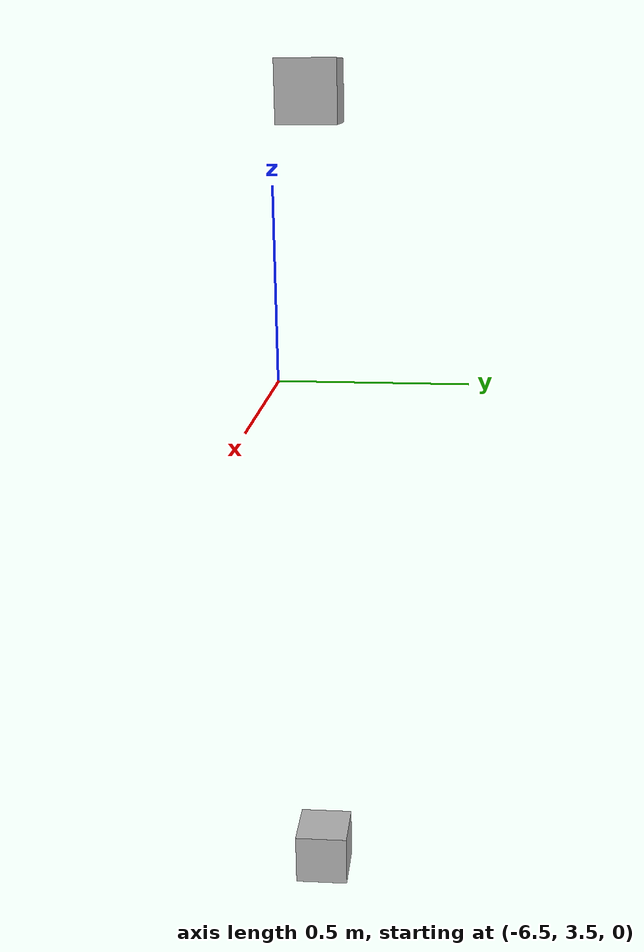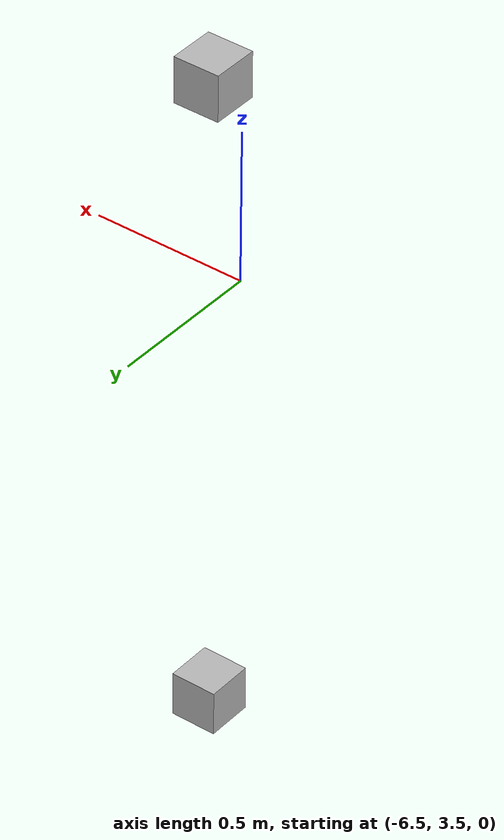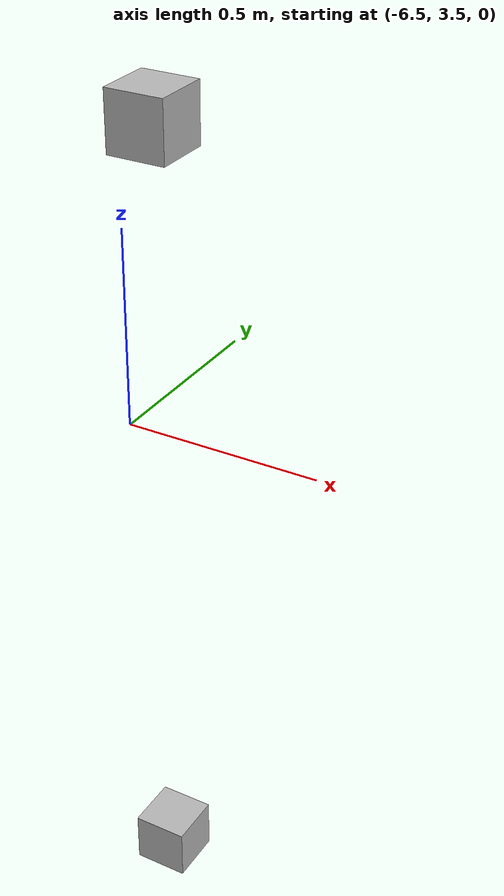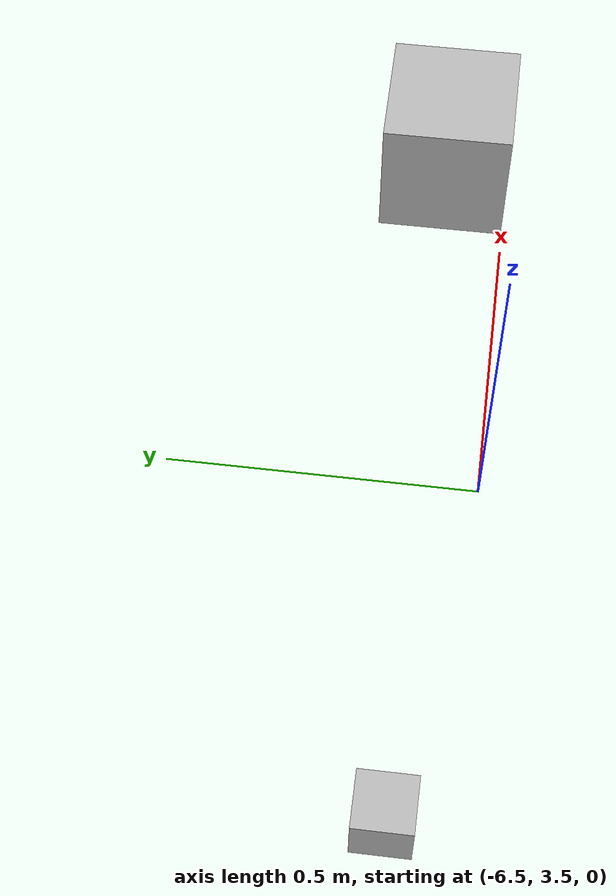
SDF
<sdf version="1.7">
 <world name="default">
  <model name="orthogonal_747_2.000.15_TS">
   <static>1</static>
   <link name="u_link_0_4_0">
    <inertial>
     <mass>1</mass>
     <inertia>
      <ixx>0.166667</ixx>
      <ixy>0</ixy>
      <ixz>0</ixz>
      <iyy>0.166667</iyy>
      <iyz>0</iyz>
      <izz>0.166667</izz>
     </inertia>
    </inertial>
    <pose>0 8.6 1.075 0 -0 0</pose>
    <visual name="visual_0">
     <laser_retro>652</laser_retro>
     <geometry><box><size>0.15 1e-06 0.15</size></box></geometry>
     <material>
      <script><name>Gazebo/Grey</name><uri>file://media/materials/scripts/gazebo.material</uri></script>
      <shader type="pixel"><normal_map>__default__</normal_map></shader>
      <ambient>0.678 0.498 0.659 1</ambient>
      <diffuse>0.7 0.7 0.7 1</diffuse>
      <specular>0.01 0.01 0.01 1</specular>
      <emissive>0 0 0 1</emissive>
     </material>
     <pose>0 -0.075 0 0 -0 0</pose>
     <transparency>1</transparency>
    </visual>
    <visual name="visual_1">
     <laser_retro>653</laser_retro>
     <geometry><box><size>0.15 1e-06 0.15</size></box></geometry>
     <material>
      <script><name>Gazebo/Grey</name><uri>file://media/materials/scripts/gazebo.material</uri></script>
      <shader type="pixel"><normal_map>__default__</normal_map></shader>
      <ambient>0.447 0.624 0.812 1</ambient>
      <diffuse>0.7 0.7 0.7 1</diffuse>
      <specular>0.01 0.01 0.01 1</specular>
      <emissive>0 0 0 1</emissive>
     </material>
     <pose>0 0.075 0 0 -0 0</pose>
     <transparency>1</transparency>
    </visual>
    <visual name="visual_2">
     <laser_retro>654</laser_retro>
     <geometry><box><size>0.15 0.15 1e-06</size></box></geometry>
     <material>
      <script><name>Gazebo/Grey</name><uri>file://media/materials/scripts/gazebo.material</uri></script>
      <shader type="pixel"><normal_map>__default__</normal_map></shader>
      <ambient>0.988 0.686 0.243 1</ambient>
      <diffuse>0.7 0.7 0.7 1</diffuse>
      <specular>0.01 0.01 0.01 1</specular>
      <emissive>0 0 0 1</emissive>
     </material>
     <pose>0 0 -0.075 0 -0 0</pose>
     <transparency>1</transparency>
    </visual>
    <visual name="visual_3">
     <laser_retro>655</laser_retro>
     <geometry><box><size>1e-06 0.15 0.15</size></box></geometry>
     <material>
      <script><name>Gazebo/Grey</name><uri>file://media/materials/scripts/gazebo.material</uri></script>
      <shader type="pixel"><normal_map>__default__</normal_map></shader>
      <ambient>0.988 0.914 0.31 1</ambient>
      <diffuse>0.7 0.7 0.7 1</diffuse>
      <specular>0.01 0.01 0.01 1</specular>
      <emissive>0 0 0 1</emissive>
     </material>
     <pose>0.075 0 0 0 -0 0</pose>
     <transparency>1</transparency>
    </visual>
    <visual name="visual_4">
     <laser_retro>656</laser_retro>
     <geometry><box><size>0.15 0.15 1e-06</size></box></geometry>
     <material>
      <script><name>Gazebo/Grey</name><uri>file://media/materials/scripts/gazebo.material</uri></script>
      <shader type="pixel"><normal_map>__default__</normal_map></shader>
      <ambient>0.937 0.161 0.161 1</ambient>
      <diffuse>0.7 0.7 0.7 1</diffuse>
      <specular>0.01 0.01 0.01 1</specular>
      <emissive>0 0 0 1</emissive>
     </material>
     <pose>0 0 0.075 0 -0 0</pose>
     <transparency>1</transparency>
    </visual>
    <visual name="visual_5">
     <laser_retro>657</laser_retro>
     <geometry><box><size>1e-06 0.15 0.15</size></box></geometry>
     <material>
      <script><name>Gazebo/Grey</name><uri>file://media/materials/scripts/gazebo.material</uri></script>
      <shader type="pixel"><normal_map>__default__</normal_map></shader>
      <ambient>0.541 0.886 0.204 1</ambient>
      <diffuse>0.7 0.7 0.7 1</diffuse>
      <specular>0.01 0.01 0.01 1</specular>
      <emissive>0 0 0 1</emissive>
     </material>
     <pose>-0.075 0 0 0 -0 0</pose>
     <transparency>1</transparency>
    </visual>
    <visual name="visual_texture">
     <geometry><box><size>0.149985 0.149985 0.149985</size></box></geometry>
     <material>
      <script>
       <uri>model://BASE_MODELS/simple_block_v2_textured/materials/scripts</uri>
       <uri>model://BASE_MODELS/simple_block_v2_textured/materials/textures</uri>
       <name>metal</name>
      </script>
     </material>
     <laser_retro>658</laser_retro>
    </visual>
    <collision name="collision">
     <geometry><box><size>0.15 0.15 0.15</size></box></geometry>
     <surface>
      <friction>
       <ode><mu>1</mu><mu2>1</mu2><fdir1>0 0 0</fdir1><slip1>0</slip1><slip2>0</slip2></ode>
       <torsional>
        <coefficient>1</coefficient>
        <patch_radius>0</patch_radius>
        <surface_radius>0</surface_radius>
        <use_patch_radius>1</use_patch_radius>
        <ode><slip>0</slip></ode>
       </torsional>
      </friction>
      <bounce><restitution_coefficient>0</restitution_coefficient><threshold>1e+06</threshold></bounce>
      <contact>
       <collide_without_contact>0</collide_without_contact>
       <collide_without_contact_bitmask>1</collide_without_contact_bitmask>
       <collide_bitmask>1</collide_bitmask>
       <ode>
        <soft_cfm>0</soft_cfm>
        <soft_erp>0.2</soft_erp>
        <kp>1e+13</kp>
        <kd>1</kd>
        <max_vel>0.01</max_vel>
        <min_depth>0</min_depth>
       </ode>
       <bullet>
        <split_impulse>1</split_impulse>
        <split_impulse_penetration_threshold>-0.01</split_impulse_penetration_threshold>
        <soft_cfm>0</soft_cfm>
        <soft_erp>0.2</soft_erp>
        <kp>1e+13</kp>
        <kd>1</kd>
       </bullet>
      </contact>
     </surface>
    </collision>
   </link>
   <link name="u_link_1_4_0">
    <inertial>
     <mass>1</mass>
     <inertia>
      <ixx>0.166667</ixx>
      <ixy>0</ixy>
      <ixz>0</ixz>
      <iyy>0.166667</iyy>
      <iyz>0</iyz>
      <izz>0.166667</izz>
     </inertia>
    </inertial>
    <pose>0 8.6 3.225 0 -0 0</pose>
    <visual name="visual_0">
     <laser_retro>1499</laser_retro>
     <geometry><box><size>0.15 1e-06 0.15</size></box></geometry>
     <material>
      <script><name>Gazebo/Grey</name><uri>file://media/materials/scripts/gazebo.material</uri></script>
      <shader type="pixel"><normal_map>__default__</normal_map></shader>
      <ambient>0.678 0.498 0.659 1</ambient>
      <diffuse>0.7 0.7 0.7 1</diffuse>
      <specular>0.01 0.01 0.01 1</specular>
      <emissive>0 0 0 1</emissive>
     </material>
     <pose>0 -0.075 0 0 -0 0</pose>
     <transparency>1</transparency>
    </visual>
    <visual name="visual_1">
     <laser_retro>1500</laser_retro>
     <geometry><box><size>0.15 1e-06 0.15</size></box></geometry>
     <material>
      <script><name>Gazebo/Grey</name><uri>file://media/materials/scripts/gazebo.material</uri></script>
      <shader type="pixel"><normal_map>__default__</normal_map></shader>
      <ambient>0.447 0.624 0.812 1</ambient>
      <diffuse>0.7 0.7 0.7 1</diffuse>
      <specular>0.01 0.01 0.01 1</specular>
      <emissive>0 0 0 1</emissive>
     </material>
     <pose>0 0.075 0 0 -0 0</pose>
     <transparency>1</transparency>
    </visual>
    <visual name="visual_2">
     <laser_retro>1501</laser_retro>
     <geometry><box><size>0.15 0.15 1e-06</size></box></geometry>
     <material>
      <script><name>Gazebo/Grey</name><uri>file://media/materials/scripts/gazebo.material</uri></script>
      <shader type="pixel"><normal_map>__default__</normal_map></shader>
      <ambient>0.988 0.686 0.243 1</ambient>
      <diffuse>0.7 0.7 0.7 1</diffuse>
      <specular>0.01 0.01 0.01 1</specular>
      <emissive>0 0 0 1</emissive>
     </material>
     <pose>0 0 -0.075 0 -0 0</pose>
     <transparency>1</transparency>
    </visual>
    <visual name="visual_3">
     <laser_retro>1502</laser_retro>
     <geometry><box><size>1e-06 0.15 0.15</size></box></geometry>
     <material>
      <script><name>Gazebo/Grey</name><uri>file://media/materials/scripts/gazebo.material</uri></script>
      <shader type="pixel"><normal_map>__default__</normal_map></shader>
      <ambient>0.988 0.914 0.31 1</ambient>
      <diffuse>0.7 0.7 0.7 1</diffuse>
      <specular>0.01 0.01 0.01 1</specular>
      <emissive>0 0 0 1</emissive>
     </material>
     <pose>0.075 0 0 0 -0 0</pose>
     <transparency>1</transparency>
    </visual>
    <visual name="visual_4">
     <laser_retro>1503</laser_retro>
     <geometry><box><size>0.15 0.15 1e-06</size></box></geometry>
     <material>
      <script><name>Gazebo/Grey</name><uri>file://media/materials/scripts/gazebo.material</uri></script>
      <shader type="pixel"><normal_map>__default__</normal_map></shader>
      <ambient>0.937 0.161 0.161 1</ambient>
      <diffuse>0.7 0.7 0.7 1</diffuse>
      <specular>0.01 0.01 0.01 1</specular>
      <emissive>0 0 0 1</emissive>
     </material>
     <pose>0 0 0.075 0 -0 0</pose>
     <transparency>1</transparency>
    </visual>
    <visual name="visual_5">
     <laser_retro>1504</laser_retro>
     <geometry><box><size>1e-06 0.15 0.15</size></box></geometry>
     <material>
      <script><name>Gazebo/Grey</name><uri>file://media/materials/scripts/gazebo.material</uri></script>
      <shader type="pixel"><normal_map>__default__</normal_map></shader>
      <ambient>0.541 0.886 0.204 1</ambient>
      <diffuse>0.7 0.7 0.7 1</diffuse>
      <specular>0.01 0.01 0.01 1</specular>
      <emissive>0 0 0 1</emissive>
     </material>
     <pose>-0.075 0 0 0 -0 0</pose>
     <transparency>1</transparency>
    </visual>
    <visual name="visual_texture">
     <geometry><box><size>0.149985 0.149985 0.149985</size></box></geometry>
     <material>
      <script>
       <uri>model://BASE_MODELS/simple_block_v2_textured/materials/scripts</uri>
       <uri>model://BASE_MODELS/simple_block_v2_textured/materials/textures</uri>
       <name>metal</name>
      </script>
     </material>
     <laser_retro>1505</laser_retro>
    </visual>
    <collision name="collision">
     <geometry><box><size>0.15 0.15 0.15</size></box></geometry>
     <surface>
      <friction>
       <ode><mu>1</mu><mu2>1</mu2><fdir1>0 0 0</fdir1><slip1>0</slip1><slip2>0</slip2></ode>
       <torsional>
        <coefficient>1</coefficient>
        <patch_radius>0</patch_radius>
        <surface_radius>0</surface_radius>
        <use_patch_radius>1</use_patch_radius>
        <ode><slip>0</slip></ode>
       </torsional>
      </friction>
      <bounce><restitution_coefficient>0</restitution_coefficient><threshold>1e+06</threshold></bounce>
      <contact>
       <collide_without_contact>0</collide_without_contact>
       <collide_without_contact_bitmask>1</collide_without_contact_bitmask>
       <collide_bitmask>1</collide_bitmask>
       <ode>
        <soft_cfm>0</soft_cfm>
        <soft_erp>0.2</soft_erp>
        <kp>1e+13</kp>
        <kd>1</kd>
        <max_vel>0.01</max_vel>
        <min_depth>0</min_depth>
       </ode>
       <bullet>
        <split_impulse>1</split_impulse>
        <split_impulse_penetration_threshold>-0.01</split_impulse_penetration_threshold>
        <soft_cfm>0</soft_cfm>
        <soft_erp>0.2</soft_erp>
        <kp>1e+13</kp>
        <kd>1</kd>
       </bullet>
      </contact>
     </surface>
    </collision>
   </link>
   <pose>-6.47624 -5 -2.5 0 -0 0</pose>
  </model>
 </world>
</sdf>
